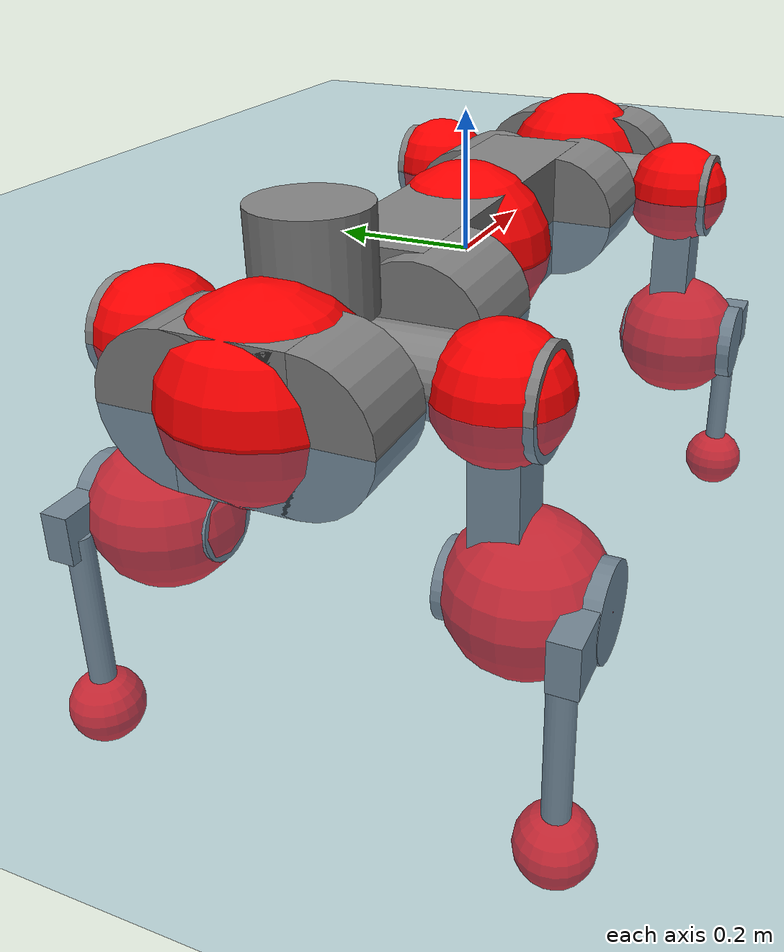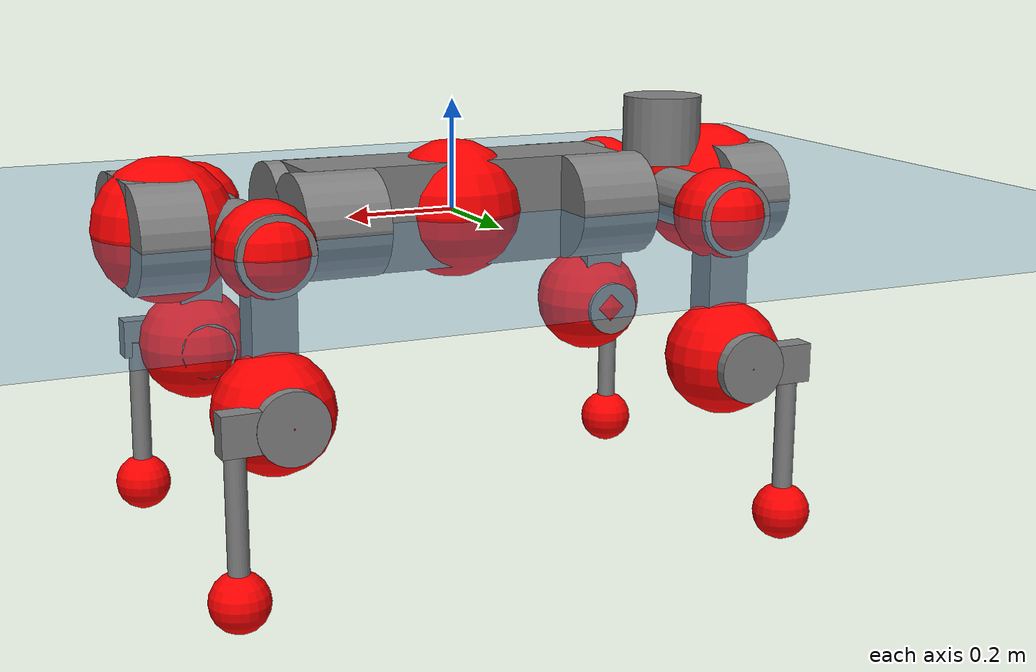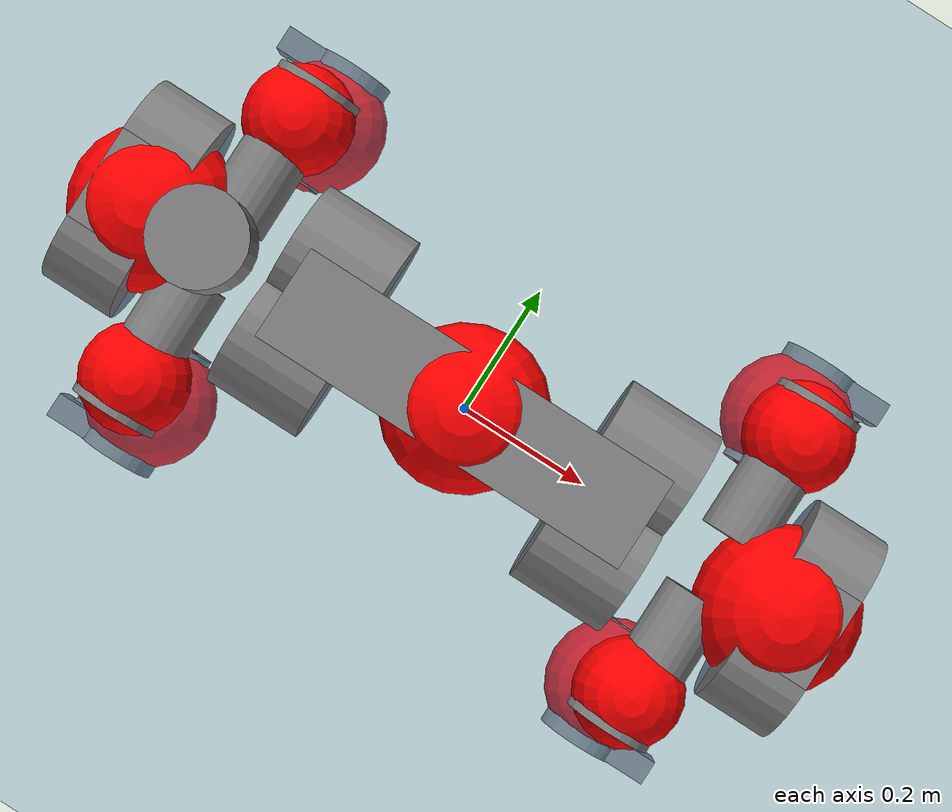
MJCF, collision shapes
<mujoco model="anymal_c">
  <compiler angle="radian" assetdir="assets" balanceinertia="true" inertiafromgeom="false"/>

  <option timestep="0.005" density="1.2" viscosity="2e-05"/>

  <size nkey="1"/>

  <visual>
    <quality shadowsize="8192"/>
    <map shadowclip="0.5"/>
  </visual>

  <default>
    <default class="/">
      <material specular="0" shininess="0.25"/>
      <geom contype="0" conaffinity="0" group="1" solref="-1000 -80"/>
      <site size="0.01 0.005 0.005" group="5"/>
      <general forcelimited="true" forcerange="-80 80" biastype="affine" gainprm="80" biasprm="0 -80 -2"/>
      <default class="anymal_c">
        <joint armature="0.01" damping="0.01" frictionloss="0.1"/>
        <default class="visual">
          <geom type="mesh" group="2"/>
          <default class="visual_zflip"/>
        </default>
        <default class="collision">
          <geom type="cylinder" group="3"/>
          <default class="foot">
            <geom size="0.03 0 0" type="sphere" condim="6" priority="1" friction="0.8 0.02 0.01" solimp="0.015 1 0.03"/>
          </default>
        </default>
      </default>
      <default class="reward_collision_sphere">
        <geom group="5" rgba="1 0 0 1"/>
      </default>
    </default>
  </default>

  <asset>
    <texture type="skybox" colorspace="auto" name="//unnamed_texture_0" builtin="gradient" rgb1="0.95 0.95 0.95" rgb2="0.95 0.95 0.95" width="100" height="600"/>
    <texture type="2d" colorspace="auto" name="texplane" builtin="checker" rgb1="0.345 0.575 0.748" rgb2="0.345 0.575 0.748" markrgb="1 1 1" width="512" height="512"/>
    <texture type="2d" colorspace="linear" name="base" file="base.png"/>
    <texture type="2d" colorspace="linear" name="top_shell" file="top_shell.png"/>
    <texture type="2d" colorspace="linear" name="bottom_shell" file="bottom_shell.png"/>
    <texture type="2d" colorspace="linear" name="remote" file="remote.png"/>
    <texture type="2d" colorspace="linear" name="hatch" file="hatch.png"/>
    <texture type="2d" colorspace="linear" name="handle" file="handle.png"/>
    <texture type="2d" colorspace="linear" name="face" file="face.png"/>
    <texture type="2d" colorspace="linear" name="battery" file="battery.png"/>
    <texture type="2d" colorspace="linear" name="lidar_cage" file="lidar_cage.png"/>
    <texture type="2d" colorspace="linear" name="depth_camera" file="depth_camera.png"/>
    <texture type="2d" colorspace="linear" name="wide_angle_camera" file="wide_angle_camera.png"/>
    <texture type="2d" colorspace="linear" name="lidar" file="lidar.png"/>
    <texture type="2d" colorspace="linear" name="drive" file="drive.png"/>
    <texture type="2d" colorspace="linear" name="hip_l" file="hip_l.png"/>
    <texture type="2d" colorspace="linear" name="shank_l" file="shank_l.png"/>
    <texture type="2d" colorspace="linear" name="foot" file="foot.png"/>
    <texture type="2d" colorspace="linear" name="thigh" file="thigh.png"/>
    <texture type="2d" colorspace="linear" name="shank_r" file="shank_r.png"/>
    <texture type="2d" colorspace="linear" name="hip_r" file="hip_r.png"/>
    <material name="MatPlane" class="/" texture="texplane" texuniform="true" texrepeat="2 2" specular="0.9" shininess="0.5"/>
    <material name="black_plastic" class="/" rgba="0.007 0.007 0.007 1"/>
    <material name="green" class="/" rgba="0.052 0.178 0.033 1"/>
    <material name="red" class="/" rgba="0.178 0.006 0.005 1"/>
    <material name="yellow" class="/" rgba="0.178 0.119 0.006 1"/>
    <material name="lwl" class="/" rgba="0.8 0.8 0.8 1"/>
    <material name="base" class="/" texture="base"/>
    <material name="top_shell" class="/" texture="top_shell"/>
    <material name="bottom_shell" class="/" texture="bottom_shell"/>
    <material name="hip_l" class="/" texture="hip_l"/>
    <material name="thigh" class="/" texture="thigh"/>
    <material name="shank_l" class="/" texture="shank_l"/>
    <material name="foot" class="/" texture="foot"/>
    <material name="hip_r" class="/" texture="hip_r"/>
    <material name="shank" class="/" texture="shank_r"/>
    <material name="hatch" class="/" texture="hatch"/>
    <material name="remote" class="/" texture="remote"/>
    <material name="handle" class="/" texture="handle"/>
    <material name="face" class="/" texture="face"/>
    <material name="depth_camera" class="/" texture="depth_camera"/>
    <material name="wide_angle_camera" class="/" texture="wide_angle_camera"/>
    <material name="battery" class="/" texture="battery"/>
    <material name="lidar_cage" class="/" texture="lidar_cage"/>
    <material name="lidar" class="/" texture="lidar"/>
    <material name="drive" class="/" texture="drive"/>
    <mesh name="base_0" class="/" file="base_0.obj"/>
    <mesh name="base_1" class="/" file="base_1.obj"/>
    <mesh name="base_2" class="/" file="base_2.obj"/>
    <mesh name="base_3" class="/" file="base_3.obj"/>
    <mesh name="base_4" class="/" file="base_4.obj"/>
    <mesh name="base_5" class="/" file="base_5.obj"/>
    <mesh name="top_shell" class="/" file="top_shell.obj"/>
    <mesh name="bottom_shell" class="/" file="bottom_shell.obj"/>
    <mesh name="remote" class="/" file="remote.obj"/>
    <mesh name="handle" class="/" file="handle.obj"/>
    <mesh name="face" class="/" file="face.obj"/>
    <mesh name="wide_angle_camera" class="/" file="wide_angle_camera.obj"/>
    <mesh name="depth_camera" class="/" file="depth_camera.obj"/>
    <mesh name="battery" class="/" file="battery.obj"/>
    <mesh name="lidar_cage" class="/" file="lidar_cage.obj"/>
    <mesh name="lidar" class="/" file="lidar.obj"/>
    <mesh name="drive" class="/" file="drive.obj"/>
    <mesh name="hip_l" class="/" file="hip_l.obj"/>
    <mesh name="thigh" class="/" file="thigh.obj"/>
    <mesh name="shank_l" class="/" file="shank_l.obj"/>
    <mesh name="foot" class="/" file="foot.obj"/>
    <mesh name="hip_r" class="/" file="hip_r.obj"/>
    <mesh name="hatch" class="/" file="hatch.obj"/>
    <mesh name="shank_r" class="/" file="shank_r.obj"/>
  </asset>

  <worldbody>
    <geom name="floor" class="/" size="100 100 0.125" type="plane" group="0" material="MatPlane"/>
    <light name="toplight_shadow" class="/" pos="0 0 5" dir="0.0990148 0.0990148 -0.990148" type="directional" ambient="0.04 0.04 0.04" diffuse="0.55 0.55 0.55" specular="0.12 0.12 0.12"/>
    <light name="toplight_fill" class="/" pos="0 0 5" dir="0.0990148 0.0990148 -0.990148" type="directional" castshadow="false" ambient="0.04 0.04 0.04" diffuse="0.3 0.3 0.3" specular="0.08 0.08 0.08"/>
    <body name="trunk" childclass="anymal_c" pos="-0.000321111 0.000314206 0.00354374" quat="1 0.000524659 -0.000448422 -0.000288614">
      <inertial pos="0.00471195 -0.00718724 0.040859" quat="0.500005 0.49972 0.50031 0.499964" mass="22.2424" diaginertia="1.39956 0.748972 0.130436"/>
      <joint name="//unnamed_joint_0" type="free" armature="0" damping="0" frictionloss="0"/>
      <geom name="//unnamed_geom_1" class="visual" material="green" mesh="base_0"/>
      <geom name="//unnamed_geom_2" class="visual" material="yellow" mesh="base_1"/>
      <geom name="//unnamed_geom_3" class="visual" material="red" mesh="base_2"/>
      <geom name="//unnamed_geom_4" class="visual" material="black_plastic" mesh="base_3"/>
      <geom name="//unnamed_geom_5" class="visual" material="lwl" mesh="base_4"/>
      <geom name="//unnamed_geom_6" class="visual" material="base" mesh="base_5"/>
      <geom name="trunk_1" class="collision" size="0.301437 0.0727607 0.0935495" type="box"/>
      <geom name="trunk_2" class="collision" size="0.0935495 0.0753593" pos="0.25759 0.0720569 0" quat="0.707107 0 0.707107 0"/>
      <geom name="trunk_3" class="collision" size="0.0935495 0.0753593" pos="-0.25759 0.0720569 0" quat="0.707107 0 0.707107 0"/>
      <geom name="trunk_4" class="collision" size="0.0935495 0.0753593" pos="0.25759 -0.0720569 0" quat="0.707107 0 0.707107 0"/>
      <geom name="trunk_5" class="collision" size="0.0935495 0.0753593" pos="-0.25759 -0.0720569 0" quat="0.707107 0 0.707107 0"/>
      <geom name="//unnamed_geom_12" class="visual" material="top_shell" mesh="top_shell"/>
      <geom name="//unnamed_geom_13" class="visual" material="bottom_shell" mesh="bottom_shell"/>
      <geom name="//unnamed_geom_14" class="visual" material="remote" mesh="remote"/>
      <geom name="//unnamed_geom_15" class="visual" material="handle" mesh="handle"/>
      <geom name="//unnamed_geom_16" class="visual" pos="0.490902 0 0" quat="1 0 0 0" material="face" mesh="face"/>
      <geom name="trunk_6" class="collision" size="0.0571691 0.0727607 0.0935495" pos="0.55604 0 0" type="box"/>
      <geom name="//unnamed_geom_18" class="collision" size="0.0935495 0.0571691" pos="0.55604 0.0720569 0" quat="0.707107 0 0.707107 0"/>
      <geom name="//unnamed_geom_19" class="collision" size="0.0935495 0.0571691" pos="0.55604 -0.0720569 0" quat="0.707107 0 0.707107 0"/>
      <geom name="//unnamed_geom_20" class="visual" pos="0.546731 0 -0.0242888" quat="0.965926 0 0.258819 0" material="depth_camera" mesh="depth_camera"/>
      <geom name="//unnamed_geom_21" class="visual" pos="0.607558 0 0.013542" material="wide_angle_camera" mesh="wide_angle_camera"/>
      <geom name="//unnamed_geom_22" class="visual_zflip" pos="-0.490902 0 0" quat="0 0 0 1" material="face" mesh="face"/>
      <geom name="trunk_7" class="collision" size="0.0571691 0.0727607 0.0935495" pos="-0.55604 0 0" quat="0 0 0 1" type="box"/>
      <geom name="//unnamed_geom_24" class="collision" size="0.0935495 0.0571691" pos="-0.55604 -0.0720569 0" quat="0 -0.707107 0 0.707107"/>
      <geom name="//unnamed_geom_25" class="collision" size="0.0935495 0.0571691" pos="-0.55604 0.0720569 0" quat="0 -0.707107 0 0.707107"/>
      <geom name="//unnamed_geom_26" class="visual" pos="-0.546731 0 -0.0242888" quat="0 -0.258819 0 0.965926" material="depth_camera" mesh="depth_camera"/>
      <geom name="//unnamed_geom_27" class="visual_zflip" pos="-0.607558 0 0.013542" quat="0 0 0 1" material="wide_angle_camera" mesh="wide_angle_camera"/>
      <geom name="//unnamed_geom_28" class="visual" material="battery" mesh="battery"/>
      <geom name="//unnamed_geom_29" class="visual" pos="0 0.0766619 0.0284047" quat="0.683013 -0.183013 0.183013 0.683013" material="depth_camera" mesh="depth_camera"/>
      <geom name="//unnamed_geom_30" class="visual" pos="0 -0.0766619 0.0284047" quat="0.683013 0.183013 0.183013 -0.683013" material="depth_camera" mesh="depth_camera"/>
      <geom name="//unnamed_geom_31" class="visual" pos="-0.431094 0 0.0664888" quat="1 0 0 0" material="lidar_cage" mesh="lidar_cage"/>
      <geom name="trunk_8" class="collision" size="0.0727607 0.0623663" pos="-0.431094 0 0.120765"/>
      <geom name="//unnamed_geom_33" class="visual" pos="-0.431094 -6.08717e-05 0.128635" quat="0.707107 0 0 -0.707107" material="lidar" mesh="lidar"/>
      <geom name="//unnamed_geom_34" class="visual" pos="0.355179 0.107012 2.15238e-09" quat="0.258819 0.965926 0 0" material="drive" mesh="drive"/>
      <geom name="//unnamed_geom_35" class="visual" pos="0.355179 -0.107012 -2.15238e-09" quat="0.258819 -0.965926 0 0" material="drive" mesh="drive"/>
      <geom name="//unnamed_geom_36" class="visual" pos="-0.355179 0.107012 -2.15238e-09" quat="0 0 0.965926 -0.258819" material="drive" mesh="drive"/>
      <geom name="//unnamed_geom_37" class="visual" pos="-0.355179 -0.107012 2.15238e-09" quat="0 0 -0.965926 -0.258819" material="drive" mesh="drive"/>
      <geom name="//unnamed_geom_38" class="visual" pos="0.137382 0 0.0660365" quat="1 0 0 0" material="hatch" mesh="hatch"/>
      <geom name="//unnamed_geom_39" class="reward_collision_sphere" size="0.124733"/>
      <geom name="//unnamed_geom_40" class="reward_collision_sphere" size="0.124733" pos="0.532946 0 0"/>
      <geom name="//unnamed_geom_41" class="reward_collision_sphere" size="0.124733" pos="-0.532946 0 0"/>
      <site name="imu" pos="0.296789 0.0170733 0.0425452" size="0.0103944"/>
      <camera name="track" pos="0 -2.05877 0" quat="0.707107 0.707107 0 0" mode="trackcom"/>
      <camera name="ego_camera" pos="0.532946 0 -0.0361844" quat="-0.5 -0.5 0.5 0.5"/>
      <body name="LF_HIP" pos="0.354382 0.109601 0.00236495" quat="0.259001 0.965877 0.000291698 0.000546187">
        <inertial pos="0.0727456 -0.0167585 -0.00605451" quat="-0.120562 0.707595 -0.130059 0.684002" mass="3.03732" diaginertia="0.0135181 0.00572172 0.00192193"/>
        <joint name="LF_HAA" pos="0 0 0" axis="0.999984 -0.00547266 0.00134037" range="-0.710135 0.476674" armature="0.00906722" damping="0" frictionloss="0.130789"/>
        <geom name="//unnamed_geom_42" class="visual" pos="0 0.000126615 -2.07963e-05" quat="0.258819 -0.965926 0 0" material="hip_l" mesh="hip_l"/>
        <geom name="//unnamed_geom_43" class="visual" pos="0.070941 -0.0838758 -0.0475028" quat="0.183013 -0.683013 0.683013 0.183013" material="drive" mesh="drive"/>
        <geom name="//unnamed_geom_44" class="collision" size="0.0519719 0.0727607" pos="0.070941 -0.0123112 -0.00624633" quat="-0.353553 -0.612372 0.612372 -0.353553"/>
        <body name="LF_THIGH" pos="0.0718408 -0.077153 -0.0386692" quat="0.1827 -0.682887 0.683332 0.182601">
          <inertial pos="0.0353652 -5.14565e-05 -0.22067" quat="0.992342 -0.00100531 -0.0874883 0.0871927" mass="3.77246" diaginertia="0.069264 0.0350956 0.00299543"/>
          <joint name="LF_HFE" pos="0 0 0" axis="0.999993 0.000603474 -0.00378747" range="-3.08349 3.13043" armature="0.0108571" damping="0.00946703" frictionloss="0.115201"/>
          <geom name="//unnamed_geom_45" class="visual" pos="0.00308269 4.8576e-06 0" quat="0.707107 0 0 -0.707107" material="thigh" mesh="thigh"/>
          <geom name="//unnamed_geom_46" class="collision" size="0.0675635 0.0415776" pos="0.0473729 0 0" quat="0.5 0.5 -0.5 -0.5"/>
          <geom name="//unnamed_geom_47" class="collision" size="0.038979 0.0311832 0.146887" pos="0.0355297 0 -0.127834" quat="0.707107 0 0 -0.707107" type="box"/>
          <geom name="//unnamed_geom_48" class="visual" pos="0.118788 0 -0.257814" quat="1 0 0 0" material="drive" mesh="drive"/>
          <geom name="//unnamed_geom_49" class="collision" size="0.0519719 0.0727607" pos="0.035885 0 -0.257814" quat="0.707107 0 0.707107 0"/>
          <geom name="//unnamed_geom_50" class="reward_collision_sphere" size="0.0831551" pos="0.0296081 0 0"/>
          <body name="LF_SHANK" pos="0.119323 -0.00333874 -0.261932" quat="0.999994 0.00226866 -0.00242693 0.000376024">
            <inertial pos="0.0044719 -0.0629995 -0.0725855" quat="0.992903 -0.116092 0.000682956 -0.025805" mass="0.691495" diaginertia="0.0235434 0.0110891 0.000729591"/>
            <joint name="LF_KFE" pos="0 0 0" axis="0.999981 0.00353368 -0.00501874" range="-3.09703 3.10176" armature="0.0107747" damping="0" frictionloss="0.122505"/>
            <geom name="//unnamed_geom_51" class="visual" pos="0.0010052 0.00535977 0" quat="0.707107 0 0 -0.707107" material="shank_l" mesh="shank_l"/>
            <geom name="LF_kfe_act" class="collision" size="0.0623663 0.0207888" pos="0.0236865 0 0" quat="0.5 0.5 -0.5 -0.5"/>
            <geom name="//unnamed_geom_53" class="collision" size="0.0597667 0.0350811 0.0197493" pos="0.0236865 -0.0591885 0" quat="0.5 0.5 -0.5 -0.5" type="box"/>
            <geom name="//unnamed_geom_54" class="visual" pos="0.0154552 -0.0888071 -0.305731" quat="0.382683 0 0 -0.92388" material="foot" mesh="foot"/>
            <geom name="LF_calf" class="collision" size="0.0181902 0.146823" pos="0.0154554 -0.0905343 -0.152865" quat="0.707107 0 0 -0.707107"/>
            <geom name="LF_foot" class="foot" size="0.0256118" pos="0.0154554 -0.0905343 -0.285377" quat="0.707107 0 0 -0.707107"/>
            <geom name="//unnamed_geom_57" class="reward_collision_sphere" size="0.103944" pos="-0.0592162 0 0"/>
            <geom name="//unnamed_geom_58" class="reward_collision_sphere" size="0.0519719" pos="0.0154554 -0.0905343 -0.285377"/>
            <site name="LF_foot" class="foot" pos="0.0154554 -0.0905343 -0.285377" quat="0.707107 0 0 -0.707107" size="0.0103944"/>
          </body>
        </body>
      </body>
      <body name="RF_HIP" pos="0.355819 -0.104844 -0.00031896" quat="0.259892 -0.965635 -0.00135366 -0.00173244">
        <inertial pos="0.0671681 0.0181524 -0.0095722" quat="0.136067 0.679167 0.127969 0.709818" mass="3.39925" diaginertia="0.0143315 0.00621136 0.00197831"/>
        <joint name="RF_HAA" pos="0 0 0" axis="0.999999 -9.57274e-05 -0.00157951" range="-0.577862 0.851811" armature="0.00981968" damping="0.014481" frictionloss="0.117884"/>
        <geom name="//unnamed_geom_59" class="visual" pos="0 -0.000126614 -2.07963e-05" quat="0.258819 0.965926 0 0" material="hip_r" mesh="hip_r"/>
        <geom name="//unnamed_geom_60" class="visual" pos="0.070941 0.0838758 -0.0475028" quat="0.183013 0.683013 0.683013 -0.183013" material="drive" mesh="drive"/>
        <geom name="//unnamed_geom_61" class="collision" size="0.0519719 0.0727607" pos="0.070941 0.0123112 -0.00624633" quat="-0.353553 0.612372 0.612372 0.353553"/>
        <body name="RF_THIGH" pos="0.062971 0.0727846 -0.0372012" quat="0.183025 0.683384 0.682749 -0.182598">
          <inertial pos="0.0380283 -0.00216899 -0.221862" quat="0.992761 -0.00513888 -0.0807494 0.0887632" mass="3.1354" diaginertia="0.0684377 0.0311501 0.00232353"/>
          <joint name="RF_HFE" pos="0 0 0" axis="0.999398 0.000822348 0.0346862" stiffness="0.00490652" range="-3.30988 3.27247" armature="0.0110241" damping="0.0297502" frictionloss="0.0960241"/>
          <geom name="//unnamed_geom_62" class="visual" pos="0.00308269 4.8576e-06 0" quat="0.707107 0 0 -0.707107" material="thigh" mesh="thigh"/>
          <geom name="//unnamed_geom_63" class="collision" size="0.0675635 0.0415776" pos="0.0473729 0 0" quat="0.5 0.5 0.5 0.5"/>
          <geom name="//unnamed_geom_64" class="collision" size="0.038979 0.0311832 0.146887" pos="0.0355297 0 -0.127834" quat="0.707107 0 0 0.707107" type="box"/>
          <geom name="//unnamed_geom_65" class="visual" pos="0.118788 0 -0.257814" quat="1 0 0 0" material="drive" mesh="drive"/>
          <geom name="//unnamed_geom_66" class="collision" size="0.0519719 0.0727607" pos="0.035885 0 -0.257814" quat="0.707107 0 0.707107 0"/>
          <geom name="//unnamed_geom_67" class="reward_collision_sphere" size="0.0831551" pos="0.0296081 0 0"/>
          <body name="RF_SHANK" pos="0.111774 0.00194643 -0.259243" quat="1 0.000180454 -0.000887294 -3.18433e-05">
            <inertial pos="0.0065042 0.0615254 -0.0807565" quat="0.992735 0.118425 -0.00136331 0.0212523" mass="0.732846" diaginertia="0.0230145 0.0104814 0.000665929"/>
            <joint name="RF_KFE" pos="0 0 0" axis="0.999069 0.0112047 -0.0416553" range="-3.11737 3.24242" armature="0.0101538" damping="0.0195728" frictionloss="0.148146"/>
            <geom name="//unnamed_geom_68" class="visual" pos="0.00100519 -0.00535976 0" quat="0.707107 0 0 0.707107" material="shank" mesh="shank_r"/>
            <geom name="RF_kfe_act" class="collision" size="0.0623663 0.0207888" pos="0.0236865 0 0" quat="0.5 0.5 0.5 0.5"/>
            <geom name="//unnamed_geom_70" class="collision" size="0.0597667 0.0350811 0.0197493" pos="0.0236865 0.0591885 0" quat="0.5 0.5 0.5 0.5" type="box"/>
            <geom name="//unnamed_geom_71" class="visual" pos="0.0154557 0.0888071 -0.305731" quat="0.382683 0 0 0.92388" material="foot" mesh="foot"/>
            <geom name="RF_calf" class="collision" size="0.0181902 0.146823" pos="0.0154554 0.0905343 -0.152865" quat="0.707107 0 0 0.707107"/>
            <geom name="RF_foot" class="foot" size="0.0317355" pos="0.0154554 0.0905343 -0.285377" quat="0.707107 0 0 0.707107"/>
            <geom name="//unnamed_geom_74" class="reward_collision_sphere" size="0.103944" pos="-0.0592162 0 0"/>
            <geom name="//unnamed_geom_75" class="reward_collision_sphere" size="0.0519719" pos="0.0154554 0.0905343 -0.285377"/>
            <site name="RF_foot" class="foot" pos="0.0154554 0.0905343 -0.285377" quat="0.707107 0 0 0.707107" size="0.0103944"/>
          </body>
        </body>
      </body>
      <body name="LH_HIP" pos="-0.356446 0.103291 0.00171017" quat="0.000740403 -0.000598516 0.965966 -0.258669">
        <inertial pos="0.068358 0.0210715 -0.00558702" quat="0.0936685 0.669188 0.131576 0.725329" mass="3.47239" diaginertia="0.013759 0.00549308 0.00201149"/>
        <joint name="LH_HAA" pos="0 0 0" axis="0.999833 0.0112837 0.0143675" stiffness="0.0206964" range="-0.460999 0.742276" armature="0.0100349" damping="0.0207643" frictionloss="0.0969826"/>
        <geom name="//unnamed_geom_76" class="visual" pos="0 -0.000126614 -2.07963e-05" quat="-0.258819 -0.965926 0 0" material="hip_r" mesh="hip_r"/>
        <geom name="//unnamed_geom_77" class="visual" pos="0.070941 0.0838758 -0.0475028" quat="0.183013 0.683013 0.683013 -0.183013" material="drive" mesh="drive"/>
        <geom name="//unnamed_geom_78" class="collision" size="0.0519719 0.0727607" pos="0.070941 0.0123112 -0.00624633" quat="-0.353553 0.612372 0.612372 0.353553"/>
        <body name="LH_THIGH" pos="0.0697837 0.080237 -0.036547" quat="0.183553 0.683049 0.682726 -0.183405">
          <inertial pos="0.0360384 0.00343757 -0.222048" quat="0.992769 -0.00517805 -0.0806849 0.0887261" mass="3.34551" diaginertia="0.0629435 0.0323099 0.00228842"/>
          <joint name="LH_HFE" pos="0 0 0" axis="0.999997 -0.00143676 -0.00206695" range="-3.12777 3.13791" armature="0.0106471" damping="0.00365845" frictionloss="0.100668"/>
          <geom name="//unnamed_geom_79" class="visual" pos="0.00308269 4.8576e-06 0" quat="0.707107 0 0 -0.707107" material="thigh" mesh="thigh"/>
          <geom name="//unnamed_geom_80" class="collision" size="0.0675635 0.0415776" pos="0.0473729 0 0" quat="0.5 0.5 -0.5 -0.5"/>
          <geom name="//unnamed_geom_81" class="collision" size="0.038979 0.0311832 0.146887" pos="0.0355297 0 -0.127834" quat="0.707107 0 0 -0.707107" type="box"/>
          <geom name="//unnamed_geom_82" class="visual" pos="0.118788 0 -0.257814" quat="1 0 0 0" material="drive" mesh="drive"/>
          <geom name="//unnamed_geom_83" class="collision" size="0.0519719 0.0727607" pos="0.035885 0 -0.257814" quat="0.707107 0 0.707107 0"/>
          <geom name="//unnamed_geom_84" class="reward_collision_sphere" size="0.0831551" pos="0.0296081 0 0"/>
          <body name="LH_SHANK" pos="0.11467 0.000127078 -0.257324" quat="0.999997 0.0012784 -0.000358426 -0.0021353">
            <inertial pos="0.00211107 0.062496 -0.0698055" quat="0.992939 0.115863 -0.00101965 0.0254447" mass="0.62915" diaginertia="0.0207838 0.00870032 0.000532872"/>
            <joint name="LH_KFE" pos="0 0 0" axis="0.999923 -0.00819538 0.00933759" range="-3.13018 3.32289" armature="0.0108336" damping="0" frictionloss="0.098619"/>
            <geom name="//unnamed_geom_85" class="visual" pos="0.00100519 -0.00535976 0" quat="-0.707107 0 0 -0.707107" material="shank" mesh="shank_r"/>
            <geom name="LH_kfe_act" class="collision" size="0.0623663 0.0207888" pos="0.0236865 0 0" quat="0.5 0.5 -0.5 -0.5"/>
            <geom name="//unnamed_geom_87" class="collision" size="0.0597667 0.0350811 0.0197493" pos="0.0236865 0.0591885 0" quat="0.5 0.5 -0.5 -0.5" type="box"/>
            <geom name="//unnamed_geom_88" class="visual" pos="0.0154557 0.0888071 -0.305731" quat="-0.382683 0 0 -0.92388" material="foot" mesh="foot"/>
            <geom name="LH_calf" class="collision" size="0.0181902 0.146823" pos="0.0154554 0.0905343 -0.152865" quat="0.707107 0 0 -0.707107"/>
            <geom name="LH_foot" class="foot" size="0.0397393" pos="0.0154554 0.0905343 -0.285377" quat="0.707107 0 0 -0.707107"/>
            <geom name="//unnamed_geom_91" class="reward_collision_sphere" size="0.103944" pos="-0.0592162 0 0"/>
            <geom name="//unnamed_geom_92" class="reward_collision_sphere" size="0.0519719" pos="0.0154554 0.0905343 -0.285377"/>
            <site name="LH_foot" class="foot" pos="0.0154554 0.0905343 -0.285377" quat="0.707107 0 0 -0.707107" size="0.0103944"/>
          </body>
        </body>
      </body>
      <body name="RH_HIP" pos="-0.355392 -0.111655 0.00451585" quat="-0.00152882 0.00213728 -0.966203 -0.257771">
        <inertial pos="0.0687375 -0.0168563 -0.00694864" quat="-0.157854 0.703954 -0.163734 0.672846" mass="3.18737" diaginertia="0.013695 0.00597101 0.00208192"/>
        <joint name="RH_HAA" pos="0 0 0" axis="0.999996 -0.00221503 0.00150854" range="-0.611022 0.520502" armature="0.0136959" damping="0.0171973" frictionloss="0.0908007"/>
        <geom name="//unnamed_geom_93" class="visual" pos="0 0.000126615 -2.07963e-05" quat="-0.258819 0.965926 0 0" material="hip_l" mesh="hip_l"/>
        <geom name="//unnamed_geom_94" class="visual" pos="0.070941 -0.0838758 -0.0475028" quat="-0.183013 0.683013 -0.683013 -0.183013" material="drive" mesh="drive"/>
        <geom name="//unnamed_geom_95" class="collision" size="0.0519719 0.0727607" pos="0.070941 -0.0123112 -0.00624633" quat="0.353553 0.612372 -0.612372 0.353553"/>
        <body name="RH_THIGH" pos="0.0686991 -0.073344 -0.0306124" quat="-0.183478 0.68276 -0.683037 -0.183399">
          <inertial pos="0.0366294 -0.00869909 -0.224148" quat="0.992497 -0.00641601 -0.0669839 0.102086" mass="3.84353" diaginertia="0.0762846 0.0377139 0.00273477"/>
          <joint name="RH_HFE" pos="0 0 0" axis="0.999907 0.0016635 -0.0135471" range="-3.14653 3.27512" armature="0.00555696" damping="0.00526226" frictionloss="0.107943"/>
          <geom name="//unnamed_geom_96" class="visual" pos="0.00308269 4.8576e-06 0" quat="0.707107 0 0 -0.707107" material="thigh" mesh="thigh"/>
          <geom name="//unnamed_geom_97" class="collision" size="0.0675635 0.0415776" pos="0.0473729 0 0" quat="0.5 0.5 0.5 0.5"/>
          <geom name="//unnamed_geom_98" class="collision" size="0.038979 0.0311832 0.146887" pos="0.0355297 0 -0.127834" quat="0.707107 0 0 0.707107" type="box"/>
          <geom name="//unnamed_geom_99" class="visual" pos="0.118788 0 -0.257814" quat="1 0 0 0" material="drive" mesh="drive"/>
          <geom name="//unnamed_geom_100" class="collision" size="0.0519719 0.0727607" pos="0.035885 0 -0.257814" quat="0.707107 0 0.707107 0"/>
          <geom name="//unnamed_geom_101" class="reward_collision_sphere" size="0.0831551" pos="0.0296081 0 0"/>
          <body name="RH_SHANK" pos="0.121907 0.00444968 -0.255112" quat="0.999998 -0.000557322 0.000427707 -0.00178959">
            <inertial pos="0.00533955 -0.0635415 -0.0726122" quat="0.994614 -0.0926778 0.0248615 -0.0391869" mass="0.724118" diaginertia="0.0245954 0.010726 0.000612922"/>
            <joint name="RH_KFE" pos="0 0 0" axis="0.999494 -0.0293322 0.0123008" range="-3.23234 3.01876" armature="0.00954545" damping="0.00928762" frictionloss="0.114691"/>
            <geom name="//unnamed_geom_102" class="visual" pos="0.0010052 0.00535977 0" quat="0.707107 0 0 -0.707107" material="shank_l" mesh="shank_l"/>
            <geom name="RH_kfe_act" class="collision" size="0.0623663 0.0207888" pos="0.0236865 0 0" quat="0.5 0.5 0.5 0.5"/>
            <geom name="//unnamed_geom_104" class="collision" size="0.0597667 0.0350811 0.0197493" pos="0.0236865 -0.0591885 0" quat="0.5 0.5 0.5 0.5" type="box"/>
            <geom name="//unnamed_geom_105" class="visual" pos="0.0154552 -0.0888071 -0.305731" quat="0.382683 0 0 -0.92388" material="foot" mesh="foot"/>
            <geom name="RH_calf" class="collision" size="0.0181902 0.146823" pos="0.0154554 -0.0905343 -0.152865" quat="0.707107 0 0 0.707107"/>
            <geom name="RH_foot" class="foot" size="0.0411532" pos="0.0154554 -0.0905343 -0.285377" quat="0.707107 0 0 0.707107"/>
            <geom name="//unnamed_geom_108" class="reward_collision_sphere" size="0.103944" pos="-0.0592162 0 0"/>
            <geom name="//unnamed_geom_109" class="reward_collision_sphere" size="0.0519719" pos="0.0154554 -0.0905343 -0.285377"/>
            <site name="RH_foot" class="foot" pos="0.0154554 -0.0905343 -0.285377" quat="0.707107 0 0 0.707107" size="0.0103944"/>
          </body>
        </body>
      </body>
    </body>
  </worldbody>

  <contact>
    <pair class="/" geom1="floor" geom2="LF_foot" name="//unnamed_contact_0"/>
    <pair class="/" geom1="floor" geom2="RF_foot" name="//unnamed_contact_1"/>
    <pair class="/" geom1="floor" geom2="LH_foot" name="//unnamed_contact_2"/>
    <pair class="/" geom1="floor" geom2="RH_foot" name="//unnamed_contact_3"/>
  </contact>

  <actuator>
    <general name="LF_HAA" class="/" joint="LF_HAA" forcerange="-88.8359 88.8359" gainprm="68.9493" biasprm="0 -68.9493 -2.04962"/>
    <general name="LF_HFE" class="/" joint="LF_HFE" forcerange="-109.33 109.33" gainprm="68.9493" biasprm="0 -68.9493 -2.04962"/>
    <general name="LF_KFE" class="/" joint="LF_KFE" forcerange="-87.0694 87.0694" gainprm="68.9493" biasprm="0 -68.9493 -2.04962"/>
    <general name="RF_HAA" class="/" joint="RF_HAA" forcerange="-80.721 80.721" gainprm="68.9493" biasprm="0 -68.9493 -2.04962"/>
    <general name="RF_HFE" class="/" joint="RF_HFE" forcerange="-84.6617 84.6617" gainprm="68.9493" biasprm="0 -68.9493 -2.04962"/>
    <general name="RF_KFE" class="/" joint="RF_KFE" forcerange="-85.6774 85.6774" gainprm="68.9493" biasprm="0 -68.9493 -2.04962"/>
    <general name="LH_HAA" class="/" joint="LH_HAA" forcerange="-74.0686 74.0686" gainprm="68.9493" biasprm="0 -68.9493 -2.04962"/>
    <general name="LH_HFE" class="/" joint="LH_HFE" forcerange="-84.6238 84.6238" gainprm="68.9493" biasprm="0 -68.9493 -2.04962"/>
    <general name="LH_KFE" class="/" joint="LH_KFE" forcerange="-87.6608 87.6608" gainprm="68.9493" biasprm="0 -68.9493 -2.04962"/>
    <general name="RH_HAA" class="/" joint="RH_HAA" forcerange="-108.59 108.59" gainprm="68.9493" biasprm="0 -68.9493 -2.04962"/>
    <general name="RH_HFE" class="/" joint="RH_HFE" forcerange="-77.7162 77.7162" gainprm="68.9493" biasprm="0 -68.9493 -2.04962"/>
    <general name="RH_KFE" class="/" joint="RH_KFE" forcerange="-78.3354 78.3354" gainprm="68.9493" biasprm="0 -68.9493 -2.04962"/>
  </actuator>

  <sensor>
    <gyro site="imu" name="imu_angular_velocity"/>
    <velocimeter site="imu" name="imu_linear_velocity"/>
    <framelinvel objtype="site" objname="LF_foot" name="LF_foot_global_linear_velocity"/>
    <framelinvel objtype="site" objname="RF_foot" name="RF_foot_global_linear_velocity"/>
    <framelinvel objtype="site" objname="LH_foot" name="LH_foot_global_linear_velocity"/>
    <framelinvel objtype="site" objname="RH_foot" name="RH_foot_global_linear_velocity"/>
  </sensor>

  <keyframe>
    <key name="home" qpos="0 0 0.55 1 0 0 0 0 0.4 -0.8 0 -0.4 0.8 0 -0.4 0.8 0 0.4 -0.8"/>
  </keyframe>
</mujoco>
